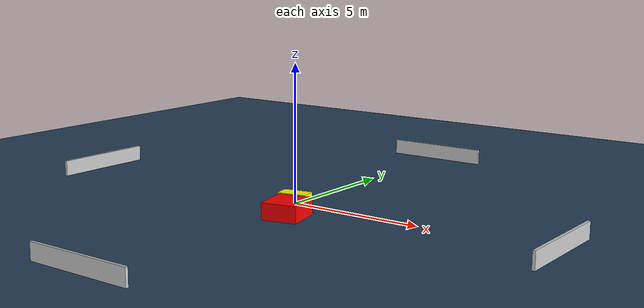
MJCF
<?xml version="1.0" ?>
<mujoco model="generated_environment">
  <option timestep="0.01" integrator="RK4" cone="elliptic"/>
  <default>
    <geom density="1"/>
  </default>
  <asset>
    <texture builtin="gradient" height="3072" name="skybox" rgb1="0.3 0.5 0.7" rgb2="0 0 0" type="skybox" width="512"/>
    <texture builtin="checker" height="300" name="groundplane" rgb1="0.2 0.3 0.4" rgb2="0.1 0.2 0.3" type="2d" width="300"/>
    <material name="groundplane" reflectance="0.2" texrepeat="5 5" texture="groundplane"/>
  </asset>
  <worldbody>
    <light dir="0 0 -1" directional="true" pos="0 0 1.5"/>
    <geom condim="3" friction="0.5 0.005 0.001" material="groundplane" name="floor" pos="0 0 0" size="0 0 0.05" type="plane"/>
    <body name="walls">
      <geom name="wall_1" condim="4" pos="-10.0 0.0 0.3" rgba="0.800000011920929 0.800000011920929 0.800000011920929 1.0" size="0.05 2.0 0.3" type="box"/>
      <geom name="wall_2" condim="4" pos="10.0 0.0 0.3" rgba="0.800000011920929 0.800000011920929 0.800000011920929 1.0" size="0.05 2.0 0.3" type="box"/>
      <geom name="wall_3" condim="4" pos="0.0 -10.0 0.3" rgba="0.800000011920929 0.800000011920929 0.800000011920929 1.0" size="2.0 0.05 0.3" type="box"/>
      <geom name="wall_4" condim="4" pos="0.0 10.0 0.3" rgba="0.800000011920929 0.800000011920929 0.800000011920929 1.0" size="2.0 0.05 0.3" type="box"/>
    </body>
    <body name="robot">
      <joint name="joint_x" type="slide" pos="0 0 0" axis="1 0 0"/>
      <joint name="joint_y" type="slide" pos="0 0 0" axis="0 1 0"/>
      <geom name="robot" type="cylinder" pos="0.0 0.0 0.2" size="0.2 0.2 0.0" mass="5.0" friction="1.0 0.005 0.0001" condim="4" rgba="1.0 1.0 0.0 1.0"/>
    </body>
    <body name="obstacle_1_movable">
      <geom name="obstacle_1_movable" condim="4" pos="0.4446934417782949 -0.6125817400442654 0.3" euler="0 0 11.75182382856673" friction="0.0 0.005 0.001" rgba="1.0 1.0 0.0 1.0" size="0.5290660961542482 0.2974187518255132 0.3" type="box" mass="0.1"/>
      <joint type="free"/>
    </body>
    <body name="obstacle_2_static">
      <geom name="obstacle_2_static" condim="4" pos="0.9073602480269833 -1.6431189897294725 0.3" euler="0 0 103.16247281611152" friction="0.0 0.005 0.001" rgba="1.0 0.0 0.0 1.0" size="0.7064811073299082 0.6352243082800777 0.3" type="box"/>
    </body>
  </worldbody>
  <actuator>
    <motor name="actuator_x" joint="joint_x" gear="1" ctrlrange="-1 1"/>
    <motor name="actuator_y" joint="joint_y" gear="1" ctrlrange="-1 1"/>
  </actuator>
</mujoco>
